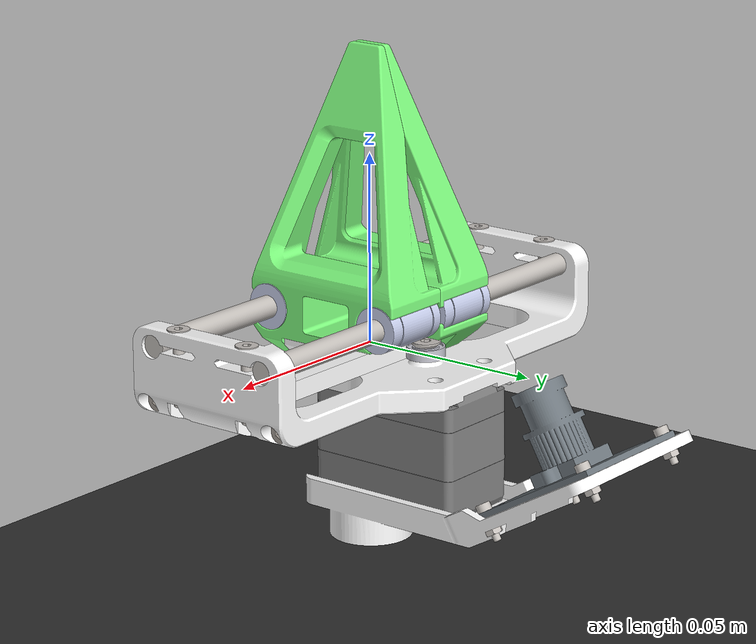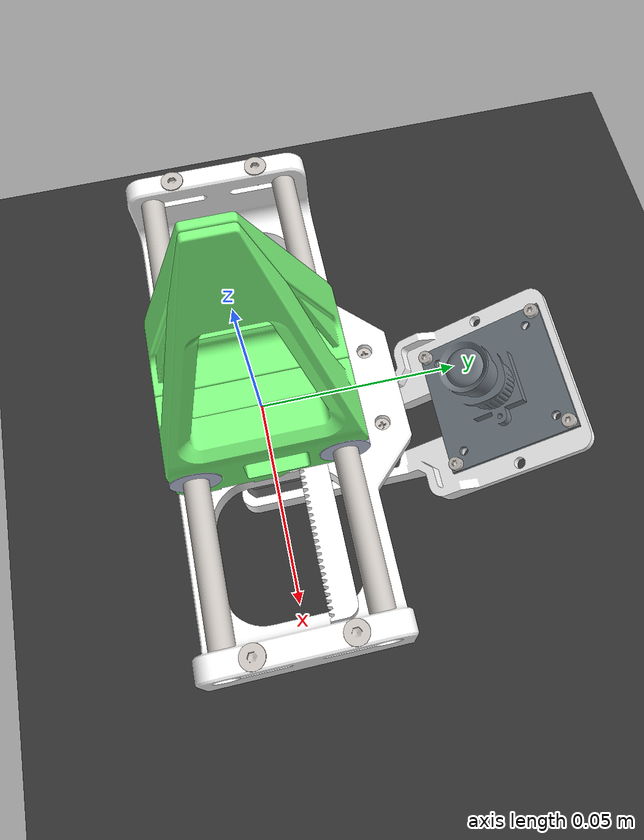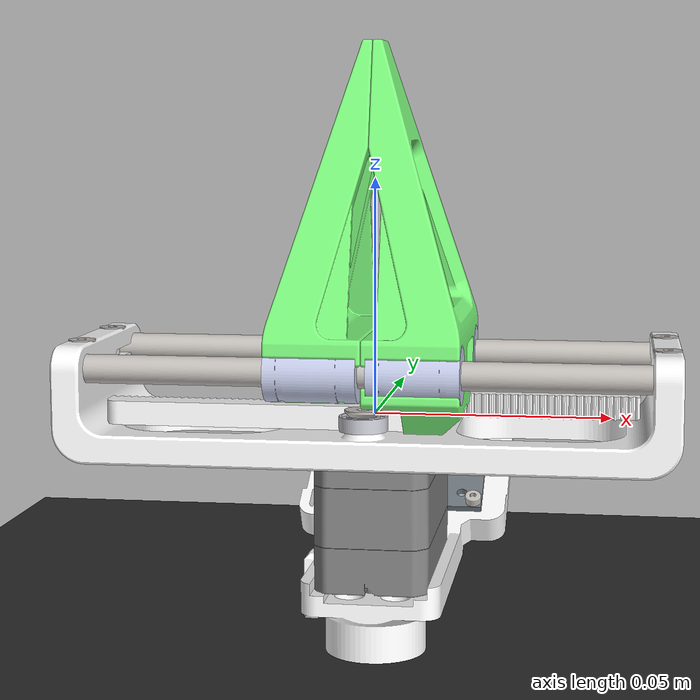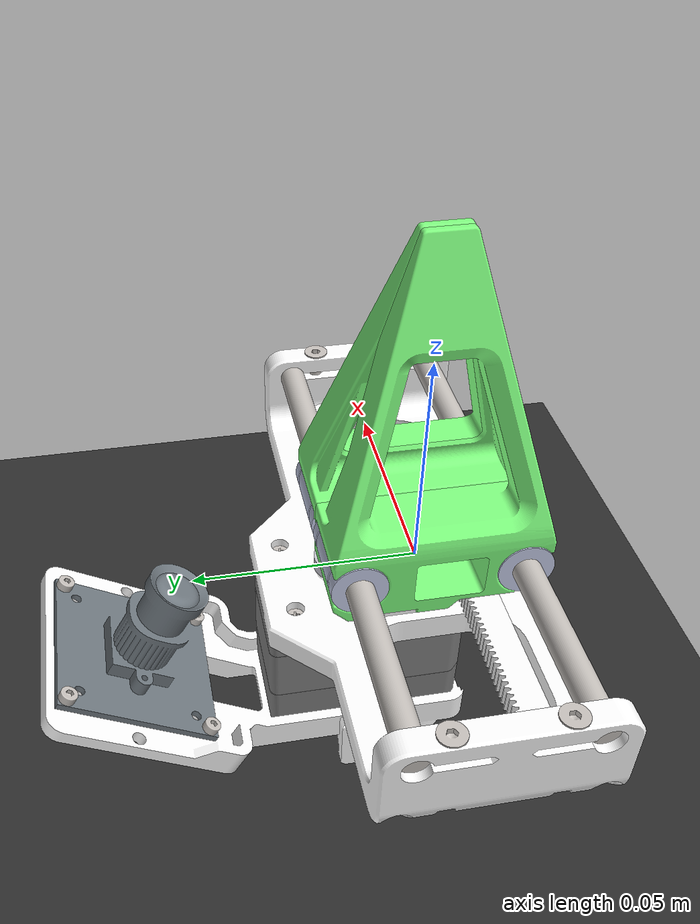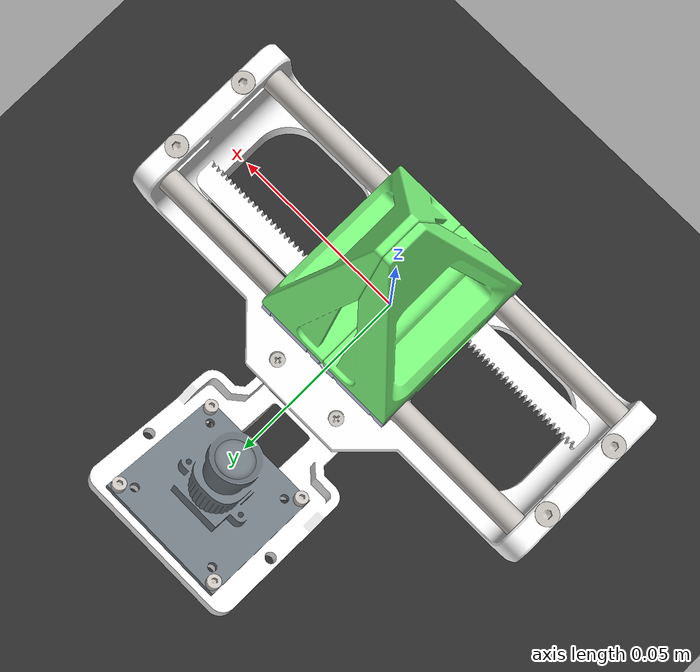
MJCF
<?xml version="1.0"?>
<mujoco model="rb9_gripper_articulated_final">
  <compiler angle="radian" meshdir="meshes" autolimits="true"/>
  <option timestep="0.002" gravity="0 0 -9.81"/>
  <visual>
    <headlight diffuse="0.6 0.6 0.6" ambient="0.3 0.3 0.3" specular="0.2 0.2 0.2"/>
    <rgba haze="0.15 0.15 0.15 1"/>
    <global offwidth="1920" offheight="1080"/>
  </visual>
  <default>
    <geom friction="1 0.005 0.0001" margin="0.001" condim="3"/>
    <joint damping="0.05" armature="0.001" frictionloss="0.005"/>
  </default>
  <asset>
    <mesh name="mesh_01" file="01_Bearing_676_10x6x3_MR106______________________1.stl"/>
    <mesh name="mesh_02" file="02_DIN_912_M3x50_______1.stl"/>
    <mesh name="mesh_03" file="03_GC2093_2MP_USB_Camera_Module_IMX335_5MP_USB_Camera________________3.stl"/>
    <mesh name="mesh_04" file="04_GC2093_2MP_USB_Camera_Module_IMX335_5MP_USB_Camera__________________1.stl"/>
    <mesh name="mesh_05" file="05_LM6UU__LM6UU_stp_1.stl"/>
    <mesh name="mesh_06" file="06_Main_Wheel_STS3215_Servo__________________________________M31.stl"/>
    <mesh name="mesh_07" file="07_RB9_01_060_011_Main_frame_125_follower______________________7.stl"/>
    <mesh name="mesh_08" file="08_RB9_01_060_021_Clamp____________17.stl"/>
    <mesh name="mesh_09" file="09_RB9_01_060_030_Gear_rack_long________________2.stl"/>
    <mesh name="mesh_10" file="10_RB9_01_060_040_Gear_for_gripper_0_5m_26z__________________________________M32.stl"/>
    <mesh name="mesh_11" file="11_RB9_01_060_071_Camera_holder_follower___camera_______10.stl"/>
    <mesh name="mesh_12" file="12_Rod_d6_125__________________1.stl"/>
    <mesh name="mesh_13" file="13_SG_ZIJI_15_STS3215_Servo__NONE.stl"/>
    <mesh name="mesh_14" file="14_XG_ZIJI_16_STS3215_Servo__NONE.stl"/>
    <mesh name="mesh_15" file="15_ZK_122_STS3215_Servo________________2.stl"/>
    <mesh name="mesh_16" file="16_countersunk_flat_head_cross_recess_screw_din_DIN_EN_ISO_7046_1___M2_x_8___Z___8N.stl"/>
    <mesh name="mesh_17" file="17_hex_nut_style_1_gradeab_din_Hexagon_Nut_ISO_4032___M2___D___N__EndChamfer.stl"/>
    <mesh name="mesh_18" file="18_hex_nut_style_1_gradeab_din_Hexagon_Nut_ISO_4032___M3___D___N__EndChamfer.stl"/>
    <mesh name="mesh_19" file="19_pan_head_cross_recess_screw_din_DIN_EN_ISO_7045___M3_x_4___Z___4N__RecessCore.stl"/>
    <mesh name="mesh_20" file="20_socket_countersunk_head_screw_din_DIN_7991___M3_x_20_____20N__Hex.stl"/>
    <mesh name="mesh_21" file="21_socket_countersunk_head_screw_din_DIN_7991___M3_x_8_____8N__Hex.stl"/>
    <mesh name="mesh_22" file="22_socket_countersunk_head_screw_din_DIN_7991___M4_x_8_____8N__Hex.stl"/>
    <mesh name="mesh_23" file="23_socket_head_cap_screw_din_DIN_912_M2_x_8_____8N__Hex.stl"/>
  </asset>

  <worldbody>
    <light name="key" pos="0.3 -0.2 0.4" dir="-0.5 0.3 -0.8" directional="true" diffuse="1 1 1"/>
    <light name="fill" pos="-0.25 0.25 0.25" dir="0.5 -0.5 -0.6" directional="true" diffuse="0.5 0.5 0.5"/>
    <camera name="overview" pos="0.24 -0.209497353 0.213250141" quat="0.802146954 0.45838156 0.189867859 0.332260147" fovy="45"/>
    <geom name="ground" type="plane" pos="0 0 -0.0550000398" size="0.5 0.5 0.1" rgba="0.18 0.18 0.18 1" contype="0" conaffinity="0"/>

    <body name="base_link" pos="0 0 0">
      <!-- ===== ÉLÉMENTS FIXES ===== -->
      <geom name="fixed_04" type="mesh" mesh="mesh_16" pos="0.01025 0.0083 -0.0039" quat="0.707103485 0.00168071654 0.707106082 -0.00168071037" rgba="0.776471 0.756863 0.737255 1" contype="0" conaffinity="0"/>
      <geom name="fixed_05" type="mesh" mesh="mesh_16" pos="0.01025 0.029 -0.0039" quat="0.707103485 0.00168071654 0.707106082 -0.00168071037" rgba="0.776471 0.756863 0.737255 1" contype="0" conaffinity="0"/>
      <geom name="fixed_07" type="mesh" mesh="mesh_16" pos="-0.0102521 0.00830208 -0.042" quat="-0.505277395 0.494666267 0.505279251 0.49466445" rgba="0.776471 0.756863 0.737255 1" contype="0" conaffinity="0"/>
      <geom name="fixed_26" type="mesh" mesh="mesh_16" pos="-0.0102521 0.0327521 -0.042" quat="-0.505277395 0.494666267 0.505279251 0.49466445" rgba="0.776471 0.756863 0.737255 1" contype="0" conaffinity="0"/>
      <geom name="fixed_28" type="mesh" mesh="mesh_16" pos="0.0102479 0.00830208 -0.042" quat="-0.505277395 0.494666267 0.505279251 0.49466445" rgba="0.776471 0.756863 0.737255 1" contype="0" conaffinity="0"/>
      <geom name="fixed_29" type="mesh" mesh="mesh_16" pos="-0.01025 0.029 -0.0039" quat="0.707103485 0.00168071654 0.707106082 -0.00168071037" rgba="0.776471 0.756863 0.737255 1" contype="0" conaffinity="0"/>
      <geom name="fixed_32" type="mesh" mesh="mesh_16" pos="0.0102479 0.0327521 -0.042" quat="-0.505277395 0.494666267 0.505279251 0.49466445" rgba="0.776471 0.756863 0.737255 1" contype="0" conaffinity="0"/>
      <geom name="fixed_53" type="mesh" mesh="mesh_16" pos="-0.01025 0.0083 -0.0039" quat="0.707103485 0.00168071654 0.707106082 -0.00168071037" rgba="0.776471 0.756863 0.737255 1" contype="0" conaffinity="0"/>

      <geom name="fixed_14" type="mesh" mesh="mesh_22" pos="1.19605e-16 0.018 0.0038" quat="-0.199533044 0.67837166 -0.199533777 -0.678369168" rgba="0.776471 0.756863 0.737255 1" contype="0" conaffinity="0"/>
      <geom name="fixed_55" type="mesh" mesh="mesh_22" pos="4.68917e-18 -0.018 0.0038" quat="0.678369402 0.199532981 0.678371894 -0.199532248" rgba="0.776471 0.756863 0.737255 1" contype="0" conaffinity="0"/>

      <!-- Cadre principal – collisions actives -->
      <geom name="fixed_41" type="mesh" mesh="mesh_07" pos="0 0 0" quat="1 0 0 0" rgba="1 1 1 1" contype="1" conaffinity="1"/>

      <geom name="fixed_19" type="mesh" mesh="mesh_12" pos="0.0005 -0.0175 0.011" quat="0.0904077129 0.995904838 3.67717938e-21 -5.20537146e-21" rgba="0.776471 0.756863 0.737255 1" contype="0" conaffinity="0"/>
      <geom name="fixed_38" type="mesh" mesh="mesh_12" pos="0.0005 0.0175 0.011" quat="0.995905003 0.0904058935 5.20537818e-21 -3.67716987e-21" rgba="0.776471 0.756863 0.737255 1" contype="0" conaffinity="0"/>

      <!-- Autres éléments fixes -->
      <geom name="fixed_01" type="mesh" mesh="mesh_01" pos="1.20941e-16 0.018 0.001" quat="-0.156374872 -0.156375446 0.689600287 0.689597754" rgba="0.776471 0.776471 0.815686 1" contype="0" conaffinity="0"/>
      <geom name="fixed_02" type="mesh" mesh="mesh_17" pos="0.0169979 0.0520963 -0.0340359" quat="0.965168379 0.258616077 -0.0102478173 0.038245366" rgba="0.776471 0.756863 0.737255 1" contype="0" conaffinity="0"/>
      <geom name="fixed_06" type="mesh" mesh="mesh_20" pos="-0.061 0.011 0.0162" quat="0.707103358 0.00173339948 0.707105955 -0.00173339311" rgba="0.776471 0.756863 0.737255 1" contype="0" conaffinity="0"/>
      <geom name="fixed_08" type="mesh" mesh="mesh_18" pos="0.061 -0.011 -0.0024" quat="-1.3267949e-06 1 -3.87844e-18 5.14589439e-24" rgba="0.776471 0.756863 0.737255 1" contype="0" conaffinity="0"/>
      <geom name="fixed_09" type="mesh" mesh="mesh_18" pos="-0.061 0.011 -4.33681e-19" quat="-1.3267949e-06 2.86442453e-17 -3.4179362e-17 1" rgba="0.776471 0.756863 0.737255 1" contype="0" conaffinity="0"/>
      <geom name="fixed_11" type="mesh" mesh="mesh_23" pos="0.0169979 0.0782912 -0.0114067" quat="0.668834615 0.229476229 0.693967489 0.135683614" rgba="0.776471 0.756863 0.737255 1" contype="0" conaffinity="0"/>
      <geom name="fixed_12" type="mesh" mesh="mesh_20" pos="0.061 0.011 0.0162" quat="0.707103358 -0.00173339948 0.707105955 0.00173339311" rgba="0.776471 0.756863 0.737255 1" contype="0" conaffinity="0"/>
      <geom name="fixed_13" type="mesh" mesh="mesh_18" pos="-0.061 -0.011 0" quat="-1.3267949e-06 1.41872552e-17 -4.16333312e-17 1" rgba="0.776471 0.756863 0.737255 1" contype="0" conaffinity="0"/>
      <geom name="fixed_15" type="mesh" mesh="mesh_02" pos="0.06 -0.02 -0.0045" quat="1.13580793e-06 6.8580248e-07 0.516886583 0.856053889" rgba="0.65098 0.619608 0.588235 1" contype="0" conaffinity="0"/>
      <geom name="fixed_16" type="mesh" mesh="mesh_17" pos="-0.0170021 0.0815412 -0.0170359" quat="0.965168379 0.258616077 -0.0102478173 0.038245366" rgba="0.776471 0.756863 0.737255 1" contype="0" conaffinity="0"/>
      <geom name="fixed_17" type="mesh" mesh="mesh_02" pos="0.06 0.02 -0.0045" quat="-6.85803987e-07 -1.13580702e-06 0.856053203 0.516887719" rgba="0.65098 0.619608 0.588235 1" contype="0" conaffinity="0"/>
      <geom name="fixed_21" type="mesh" mesh="mesh_03" pos="-2.07734e-06 0.0653187 -0.0229378" quat="0.866024792 -0.50000106 2.14865313e-14 -2.83082676e-14" rgba="0.439216 0.47451 0.501961 1" contype="0" conaffinity="0"/>
      <geom name="fixed_22" type="mesh" mesh="mesh_04" pos="-2.07734e-06 0.0653187 -0.0229378" quat="0.866024792 -0.50000106 2.14865313e-14 -2.83082676e-14" rgba="0.996078 0.870588 0.760784 1" contype="0" conaffinity="0"/>
      <geom name="fixed_24" type="mesh" mesh="mesh_20" pos="-0.061 -0.011 0.0162" quat="0.707105058 0.000774841808 0.707107655 -0.000774838962" rgba="0.776471 0.756863 0.737255 1" contype="0" conaffinity="0"/>
      <geom name="fixed_25" type="mesh" mesh="mesh_18" pos="0.061 0.011 -0.0024" quat="-1.3267949e-06 1 -2.7755562e-17 2.86442368e-17" rgba="0.776471 0.756863 0.737255 1" contype="0" conaffinity="0"/>
      <geom name="fixed_31" type="mesh" mesh="mesh_01" pos="4.38435e-18 -0.018 0.001" quat="0.689597649 0.689600182 0.15637591 0.156375336" rgba="0.776471 0.776471 0.815686 1" contype="0" conaffinity="0"/>
      <geom name="fixed_33" type="mesh" mesh="mesh_23" pos="-0.0170021 0.0488463 -0.0284067" quat="0.668834615 0.229476229 0.693967489 0.135683614" rgba="0.776471 0.756863 0.737255 1" contype="0" conaffinity="0"/>
      <geom name="fixed_39" type="mesh" mesh="mesh_17" pos="-0.0170021 0.0520963 -0.0340359" quat="0.965168379 0.258616077 -0.0102478173 0.038245366" rgba="0.776471 0.756863 0.737255 1" contype="0" conaffinity="0"/>
      <geom name="fixed_40" type="mesh" mesh="mesh_11" pos="-2.07734e-06 0.0173021 -0.042" quat="0.707105483 2.15723472e-14 0.70710808 -2.1572268e-14" rgba="1 1 1 1" contype="0" conaffinity="0"/>
      <geom name="fixed_42" type="mesh" mesh="mesh_02" pos="-0.06 -0.02 -0.0045" quat="0.516887719 0.856053203 -2.41055033e-17 8.27129215e-17" rgba="0.65098 0.619608 0.588235 1" contype="0" conaffinity="0"/>
      <geom name="fixed_44" type="mesh" mesh="mesh_17" pos="0.0169979 0.0815412 -0.0170359" quat="0.965168379 0.258616077 -0.0102478173 0.038245366" rgba="0.776471 0.756863 0.737255 1" contype="0" conaffinity="0"/>
      <geom name="fixed_45" type="mesh" mesh="mesh_23" pos="-0.0170021 0.0782912 -0.0114067" quat="0.668834615 0.229476229 0.693967489 0.135683614" rgba="0.776471 0.756863 0.737255 1" contype="0" conaffinity="0"/>
      <geom name="fixed_46" type="mesh" mesh="mesh_23" pos="0.0169979 0.0488463 -0.0284067" quat="0.668834615 0.229476229 0.693967489 0.135683614" rgba="0.776471 0.756863 0.737255 1" contype="0" conaffinity="0"/>
      <geom name="fixed_47" type="mesh" mesh="mesh_13" pos="-1.32284e-15 0.0255 -0.0134" quat="0.499998163 0.5 0.500001837 0.5" rgba="0.501961 0.501961 0.501961 1" contype="0" conaffinity="0"/>
      <geom name="fixed_48" type="mesh" mesh="mesh_19" pos="-2.65624e-15 5.09753e-14 -0.0014" quat="0.504237486 -0.495726262 0.504239338 0.495724441" rgba="0.776471 0.756863 0.737255 1" contype="0" conaffinity="0"/>
      <geom name="fixed_49" type="mesh" mesh="mesh_15" pos="-3.78125e-06 0.0255038 -0.0134" quat="0.499998163 0.5 0.500001837 0.5" rgba="0.501961 0.501961 0.501961 1" contype="0" conaffinity="0"/>
      <geom name="fixed_50" type="mesh" mesh="mesh_14" pos="-2.07734e-06 0.0255021 -0.0134" quat="0.499998163 0.5 0.500001837 0.5" rgba="0.501961 0.501961 0.501961 1" contype="0" conaffinity="0"/>
      <geom name="fixed_51" type="mesh" mesh="mesh_06" pos="0.01 5.68639e-14 -0.0308" quat="9.38183945e-07 9.38187393e-07 0.70710808 0.707105483" rgba="0.898039 0.917647 0.929412 1" contype="0" conaffinity="0"/>
      <geom name="fixed_54" type="mesh" mesh="mesh_02" pos="-0.06 0.02 -0.0045" quat="0.856053889 0.516886583 -8.27129535e-17 2.41053936e-17" rgba="0.65098 0.619608 0.588235 1" contype="0" conaffinity="0"/>
      <geom name="fixed_56" type="mesh" mesh="mesh_20" pos="0.061 -0.011 0.0162" quat="0.707105058 -0.000774841808 0.707107655 0.000774838962" rgba="0.776471 0.756863 0.737255 1" contype="0" conaffinity="0"/>

      <!-- ===== CORPS MOBILE DROIT ===== -->
      <body name="right_gripper" pos="0 0 0" quat="1 0 0 0">
        <joint name="right_slide" type="slide" axis="1 0 0" range="-0.040 0.040"/>
        <inertial pos="0 0 0" quat="1 0 0 0" mass="0.0255" diaginertia="9.038e-6 4.326e-6 9.752e-6"/>

        <geom name="right_finger" type="mesh" mesh="mesh_08" pos="0.01 -5.33698e-17 0.011" quat="-0.499998163 -0.5 0.500001837 0.5" rgba="0.501961 1 0.501961 1"/>
        <geom name="right_rack" type="mesh" mesh="mesh_09" pos="0.019 -0.006 0.001" quat="9.38183946e-07 0.70710808 -9.38187392e-07 0.707105483" rgba="1 1 1 1" contype="0" conaffinity="0"/>
        <geom name="right_bearing_1" type="mesh" mesh="mesh_05" pos="0.001 0.0175 0.011" quat="-0.451616927 0.544097246 0.544098046 0.451616712" rgba="0.792157 0.819608 0.933333 1" contype="0" conaffinity="0"/>
        <geom name="right_bearing_2" type="mesh" mesh="mesh_05" pos="0.001 -0.0175 0.011" quat="-0.544096647 0.451617649 0.45161599 0.544098645" rgba="0.792157 0.819608 0.933333 1" contype="0" conaffinity="0"/>
        <geom name="right_screw_21_1" type="mesh" mesh="mesh_21" pos="0.007 -0.009 0.00045" quat="-0.575099121 0.411412698 0.575101233 0.411411187" rgba="0.776471 0.756863 0.737255 1" contype="0" conaffinity="0"/>
        <geom name="right_screw_21_2" type="mesh" mesh="mesh_21" pos="0.015 -0.009 0.00045" quat="-0.540557526 0.455847837 0.540559512 0.455846163" rgba="0.776471 0.756863 0.737255 1" contype="0" conaffinity="0"/>
      </body>

      <!-- ===== CORPS MOBILE GAUCHE ===== -->
      <body name="left_gripper" pos="0 0 0" quat="1 0 0 0">
        <joint name="left_slide" type="slide" axis="1 0 0" range="-0.040 0.040"/>
        <inertial pos="0 0 0" quat="1 0 0 0" mass="0.0255" diaginertia="9.038e-6 4.326e-6 9.752e-6"/>

        <geom name="left_finger" type="mesh" mesh="mesh_08" pos="-0.01 -5.68392e-17 0.011" quat="0.499998163 0.5 0.500001837 0.5" rgba="0.501961 1 0.501961 1"/>
        <geom name="left_rack" type="mesh" mesh="mesh_09" pos="-0.019 0.006 0.001" quat="-0.707105483 1.84090285e-15 0.70710808 1.84089609e-15" rgba="1 1 1 1" contype="0" conaffinity="0"/>
        <geom name="left_bearing_1" type="mesh" mesh="mesh_05" pos="-0.001 0.0175 0.011" quat="0.544096647 0.451617649 -0.45161599 0.544098645" rgba="0.792157 0.819608 0.933333 1" contype="0" conaffinity="0"/>
        <geom name="left_bearing_2" type="mesh" mesh="mesh_05" pos="-0.001 -0.0175 0.011" quat="-0.451618371 -0.544096048 0.544099245 -0.451615268" rgba="0.792157 0.819608 0.933333 1" contype="0" conaffinity="0"/>
        <geom name="left_screw_21_1" type="mesh" mesh="mesh_21" pos="-0.015 0.009 0.00045" quat="0.455844177 0.540561186 -0.455845852 0.540559201" rgba="0.776471 0.756863 0.737255 1" contype="0" conaffinity="0"/>
        <geom name="left_screw_21_2" type="mesh" mesh="mesh_21" pos="-0.007 0.009 0.00045" quat="0.41141195 0.575100687 -0.411413461 0.575098575" rgba="0.776471 0.756863 0.737255 1" contype="0" conaffinity="0"/>
      </body>

      <!-- ===== PIGNON ===== -->
      <body name="motor_pinion" pos="0 0 0" quat="1 0 0 0">
        <!-- Degré de liberté principal : rotation du pignon/moteur. -->
        <joint name="motor_joint" type="hinge" axis="0 0 1"
               range="-12.566 12.566" damping="0.05" frictionloss="0.005"/>
        <inertial pos="0 0 0" quat="1 0 0 0" mass="0.00136" diaginertia="3.357e-8 5.352e-8 3.357e-8"/>
        <!-- Le pignon reste une représentation géométrique ; la transmission est analytique. -->
        <geom name="pinion_visual" type="mesh" mesh="mesh_10" pos="3.79606e-20 -2.2656e-19 0.0037" quat="-0.670863881 0.670866345 0.223473003 -0.223472182" rgba="0.501961 0.501961 0.501961 1" contype="0" conaffinity="0"/>
      </body>

    </body>
  </worldbody>

  <equality>
    <joint name="eq_rack_right" joint1="right_slide" joint2="motor_joint"
           polycoef="0 0.0065 0 0 0"
           solref="0.002 1" solimp="0.95 0.99 0.0002"/>
    <joint name="eq_rack_left" joint1="left_slide" joint2="motor_joint"
           polycoef="0 -0.0065 0 0 0"
           solref="0.002 1" solimp="0.95 0.99 0.0002"/>
  </equality>

<actuator>
    <position name="motor_pos_ctrl" joint="motor_joint" kp="5"
              ctrlrange="-12.566 12.566"
              forcelimited="true" forcerange="-0.92 0.92"/>
  </actuator>

  <keyframe>
    <key name="nominal" qpos="0 0 0"/>
  </keyframe>

</mujoco>
